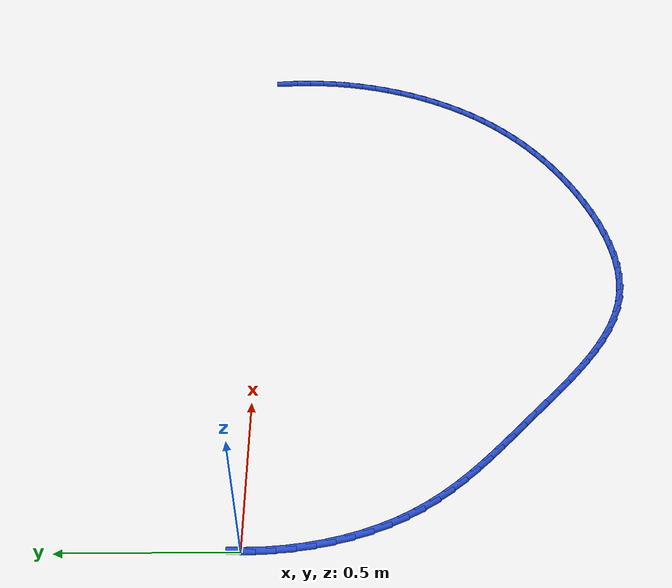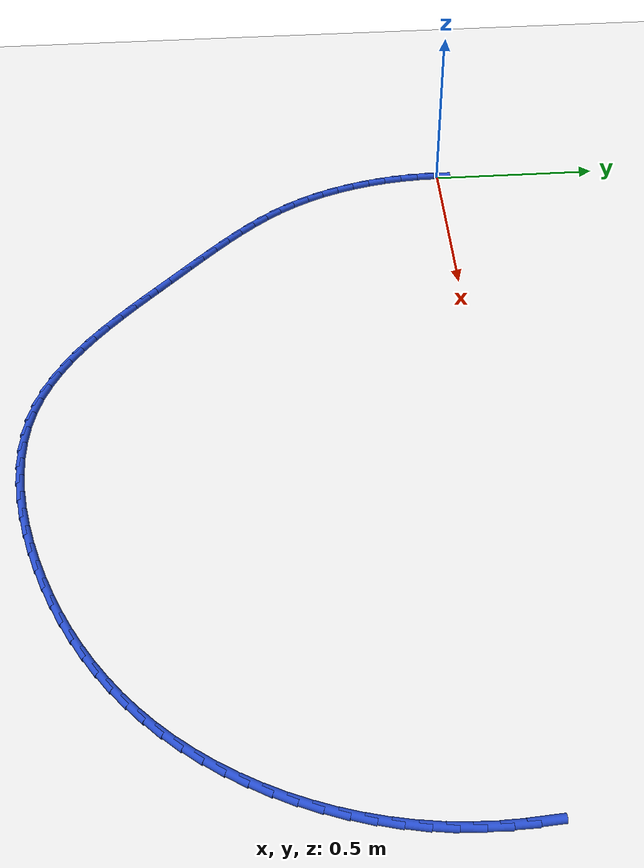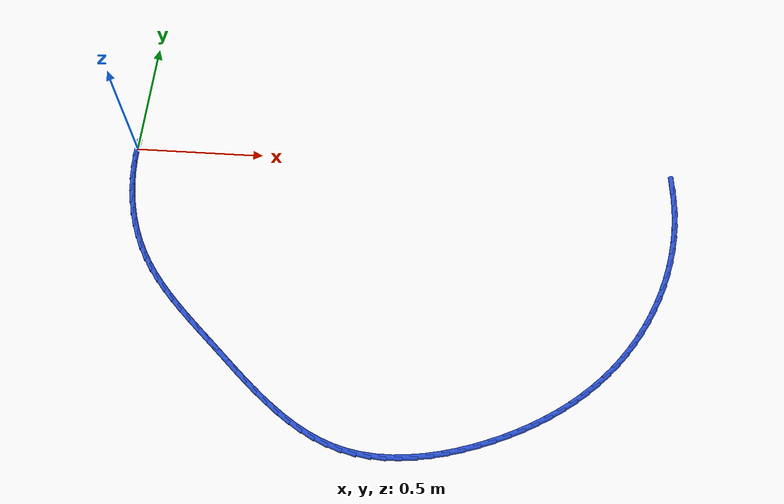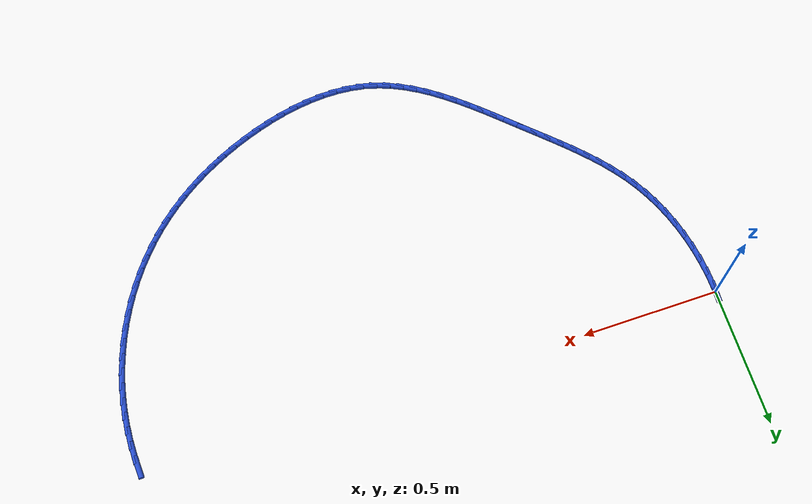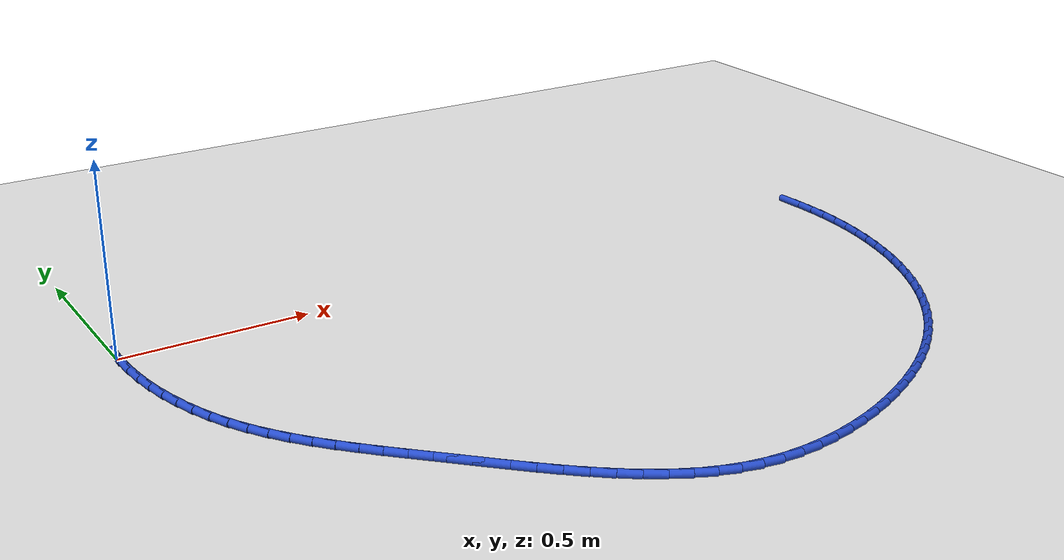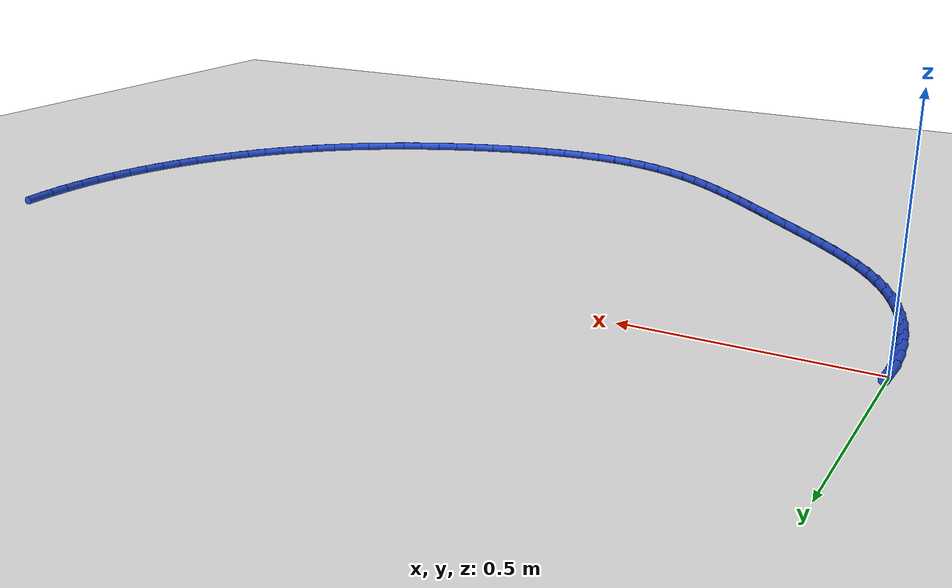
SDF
<sdf version="1.6">
 <world name="default">
  <model name="ground_plane">
   <static>1</static>
   <link name="link">
    <collision name="collision">
     <geometry><plane><normal>0 0 1</normal><size>100 100</size></plane></geometry>
     <surface><friction><ode><mu>100</mu><mu2>50</mu2></ode></friction></surface>
    </collision>
    <visual name="visual">
     <cast_shadows>0</cast_shadows>
     <geometry><plane><normal>0 0 1</normal><size>100 100</size></plane></geometry>
     <material>
      <script><uri>file://media/materials/scripts/gazebo.material</uri><name>Gazebo/WhiteGlow</name></script>
     </material>
    </visual>
   </link>
  </model>
  <model name="line">
   <link name="link_0">
    <pose>-5.0306980803327406e-17 -4.163336342344337e-17 0.01 0 1.57 1.5337237824377237</pose>
    <collision name="collision">
     <geometry><cylinder><radius>0.01</radius><length>0.08</length></cylinder></geometry>
    </collision>
    <visual name="visual">
     <material>
      <script><name>Gazebo/Blue</name><uri>file://media/materials/scripts/gazebo.material</uri></script>
     </material>
     <geometry><cylinder><radius>0.01</radius><length>0.08</length></cylinder></geometry>
    </visual>
   </link>
   <link name="link_65">
    <pose>2.1029325240520933 -0.048355621740045804 0.01 0 1.57 -1.5211881562281633</pose>
    <collision name="collision">
     <geometry><cylinder><radius>0.01</radius><length>0.08</length></cylinder></geometry>
    </collision>
    <visual name="visual">
     <material>
      <script><name>Gazebo/Blue</name><uri>file://media/materials/scripts/gazebo.material</uri></script>
     </material>
     <geometry><cylinder><radius>0.01</radius><length>0.08</length></cylinder></geometry>
    </visual>
   </link>
   <link name="link_66">
    <pose>2.105553416026026 -0.10114413645131569 0.01 0 1.57 -1.5680380547064157</pose>
    <collision name="collision">
     <geometry><cylinder><radius>0.01</radius><length>0.08</length></cylinder></geometry>
    </collision>
    <visual name="visual">
     <material>
      <script><name>Gazebo/Blue</name><uri>file://media/materials/scripts/gazebo.material</uri></script>
     </material>
     <geometry><cylinder><radius>0.01</radius><length>0.08</length></cylinder></geometry>
    </visual>
   </link>
   <link name="link_67">
    <pose>2.1056991772306577 -0.15398911704136764 0.01 0 1.57 1.5245138287157056</pose>
    <collision name="collision">
     <geometry><cylinder><radius>0.01</radius><length>0.08</length></cylinder></geometry>
    </collision>
    <visual name="visual">
     <material>
      <script><name>Gazebo/Blue</name><uri>file://media/materials/scripts/gazebo.material</uri></script>
     </material>
     <geometry><cylinder><radius>0.01</radius><length>0.08</length></cylinder></geometry>
    </visual>
   </link>
   <link name="link_68">
    <pose>2.103252849085987 -0.20680781226221878 0.01 0 1.57 1.4733071530454878</pose>
    <collision name="collision">
     <geometry><cylinder><radius>0.01</radius><length>0.08</length></cylinder></geometry>
    </collision>
    <visual name="visual">
     <material>
      <script><name>Gazebo/Blue</name><uri>file://media/materials/scripts/gazebo.material</uri></script>
     </material>
     <geometry><cylinder><radius>0.01</radius><length>0.08</length></cylinder></geometry>
    </visual>
   </link>
   <link name="link_69">
    <pose>2.0980979038435112 -0.25951729355702 0.01 0 1.57 1.420990257620386</pose>
    <collision name="collision">
     <geometry><cylinder><radius>0.01</radius><length>0.08</length></cylinder></geometry>
    </collision>
    <visual name="visual">
     <material>
      <script><name>Gazebo/Blue</name><uri>file://media/materials/scripts/gazebo.material</uri></script>
     </material>
     <geometry><cylinder><radius>0.01</radius><length>0.08</length></cylinder></geometry>
    </visual>
   </link>
   <link name="link_70">
    <pose>2.090174630823931 -0.31201124928206886 0.01 0 1.57 1.3694706388429687</pose>
    <collision name="collision">
     <geometry><cylinder><radius>0.01</radius><length>0.08</length></cylinder></geometry>
    </collision>
    <visual name="visual">
     <material>
      <script><name>Gazebo/Blue</name><uri>file://media/materials/scripts/gazebo.material</uri></script>
     </material>
     <geometry><cylinder><radius>0.01</radius><length>0.08</length></cylinder></geometry>
    </visual>
   </link>
   <link name="link_71">
    <pose>2.0795362815362854 -0.36413687816127055 0.01 0 1.57 1.3187699595308449</pose>
    <collision name="collision">
     <geometry><cylinder><radius>0.01</radius><length>0.08</length></cylinder></geometry>
    </collision>
    <visual name="visual">
     <material>
      <script><name>Gazebo/Blue</name><uri>file://media/materials/scripts/gazebo.material</uri></script>
     </material>
     <geometry><cylinder><radius>0.01</radius><length>0.08</length></cylinder></geometry>
    </visual>
   </link>
   <link name="link_72">
    <pose>2.066249458682868 -0.4157358842297725 0.01 0 1.57 1.2686624206674333</pose>
    <collision name="collision">
     <geometry><cylinder><radius>0.01</radius><length>0.08</length></cylinder></geometry>
    </collision>
    <visual name="visual">
     <material>
      <script><name>Gazebo/Blue</name><uri>file://media/materials/scripts/gazebo.material</uri></script>
     </material>
     <geometry><cylinder><radius>0.01</radius><length>0.08</length></cylinder></geometry>
    </visual>
   </link>
   <link name="link_73">
    <pose>2.0503807649659755 -0.46664997152272186 0.01 0 1.57 1.2189177848386366</pose>
    <collision name="collision">
     <geometry><cylinder><radius>0.01</radius><length>0.08</length></cylinder></geometry>
    </collision>
    <visual name="visual">
     <material>
      <script><name>Gazebo/Blue</name><uri>file://media/materials/scripts/gazebo.material</uri></script>
     </material>
     <geometry><cylinder><radius>0.01</radius><length>0.08</length></cylinder></geometry>
    </visual>
   </link>
   <link name="link_74">
    <pose>2.031996803087901 -0.5167208440752652 0.01 0 1.57 1.1693029277861655</pose>
    <collision name="collision">
     <geometry><cylinder><radius>0.01</radius><length>0.08</length></cylinder></geometry>
    </collision>
    <visual name="visual">
     <material>
      <script><name>Gazebo/Blue</name><uri>file://media/materials/scripts/gazebo.material</uri></script>
     </material>
     <geometry><cylinder><radius>0.01</radius><length>0.08</length></cylinder></geometry>
    </visual>
   </link>
   <link name="link_75">
    <pose>2.0111641757509404 -0.5657902059225505 0.01 0 1.57 1.1195829902433272</pose>
    <collision name="collision">
     <geometry><cylinder><radius>0.01</radius><length>0.08</length></cylinder></geometry>
    </collision>
    <visual name="visual">
     <material>
      <script><name>Gazebo/Blue</name><uri>file://media/materials/scripts/gazebo.material</uri></script>
     </material>
     <geometry><cylinder><radius>0.01</radius><length>0.08</length></cylinder></geometry>
    </visual>
   </link>
   <link name="link_76">
    <pose>1.9879494856573876 -0.6136997610997229 0.01 0 1.57 1.0695223705162265</pose>
    <collision name="collision">
     <geometry><cylinder><radius>0.01</radius><length>0.08</length></cylinder></geometry>
    </collision>
    <visual name="visual">
     <material>
      <script><name>Gazebo/Blue</name><uri>file://media/materials/scripts/gazebo.material</uri></script>
     </material>
     <geometry><cylinder><radius>0.01</radius><length>0.08</length></cylinder></geometry>
    </visual>
   </link>
   <link name="link_77">
    <pose>1.962419335509539 -0.6602912136419301 0.01 0 1.57 1.0188857997378384</pose>
    <collision name="collision">
     <geometry><cylinder><radius>0.01</radius><length>0.08</length></cylinder></geometry>
    </collision>
    <visual name="visual">
     <material>
      <script><name>Gazebo/Blue</name><uri>file://media/materials/scripts/gazebo.material</uri></script>
     </material>
     <geometry><cylinder><radius>0.01</radius><length>0.08</length></cylinder></geometry>
    </visual>
   </link>
   <link name="link_78">
    <pose>1.9346403280096882 -0.7054062675843199 0.01 0 1.57 0.9674397482584681</pose>
    <collision name="collision">
     <geometry><cylinder><radius>0.01</radius><length>0.08</length></cylinder></geometry>
    </collision>
    <visual name="visual">
     <material>
      <script><name>Gazebo/Blue</name><uri>file://media/materials/scripts/gazebo.material</uri></script>
     </material>
     <geometry><cylinder><radius>0.01</radius><length>0.08</length></cylinder></geometry>
    </visual>
   </link>
   <link name="link_79">
    <pose>1.9046790658601314 -0.7488866269620376 0.01 0 1.57 0.9149544225242211</pose>
    <collision name="collision">
     <geometry><cylinder><radius>0.01</radius><length>0.08</length></cylinder></geometry>
    </collision>
    <visual name="visual">
     <material>
      <script><name>Gazebo/Blue</name><uri>file://media/materials/scripts/gazebo.material</uri></script>
     </material>
     <geometry><cylinder><radius>0.01</radius><length>0.08</length></cylinder></geometry>
    </visual>
   </link>
   <link name="link_80">
    <pose>1.8726021517631621 -0.7905739958102309 0.01 0 1.57 0.8612318154040619</pose>
    <collision name="collision">
     <geometry><cylinder><radius>0.01</radius><length>0.08</length></cylinder></geometry>
    </collision>
    <visual name="visual">
     <material>
      <script><name>Gazebo/Blue</name><uri>file://media/materials/scripts/gazebo.material</uri></script>
     </material>
     <geometry><cylinder><radius>0.01</radius><length>0.08</length></cylinder></geometry>
    </visual>
   </link>
   <link name="link_81">
    <pose>1.8384762881951127 -0.8303119873578135 0.01 0 1.57 0.8071003528565533</pose>
    <collision name="collision">
     <geometry><cylinder><radius>0.01</radius><length>0.08</length></cylinder></geometry>
    </collision>
    <visual name="visual">
     <material>
      <script><name>Gazebo/Blue</name><uri>file://media/materials/scripts/gazebo.material</uri></script>
     </material>
     <geometry><cylinder><radius>0.01</radius><length>0.08</length></cylinder></geometry>
    </visual>
   </link>
   <link name="link_82">
    <pose>1.8023720507424752 -0.8680183274790665 0.01 0 1.57 0.7539496818194463</pose>
    <collision name="collision">
     <geometry><cylinder><radius>0.01</radius><length>0.08</length></cylinder></geometry>
    </collision>
    <visual name="visual">
     <material>
      <script><name>Gazebo/Blue</name><uri>file://media/materials/scripts/gazebo.material</uri></script>
     </material>
     <geometry><cylinder><radius>0.01</radius><length>0.08</length></cylinder></geometry>
    </visual>
   </link>
   <link name="link_83">
    <pose>1.7643650430583575 -0.9037069549889403 0.01 0 1.57 0.7020480090360465</pose>
    <collision name="collision">
     <geometry><cylinder><radius>0.01</radius><length>0.08</length></cylinder></geometry>
    </collision>
    <visual name="visual">
     <material>
      <script><name>Gazebo/Blue</name><uri>file://media/materials/scripts/gazebo.material</uri></script>
     </material>
     <geometry><cylinder><radius>0.01</radius><length>0.08</length></cylinder></geometry>
    </visual>
   </link>
   <link name="link_84">
    <pose>1.7245312045042607 -0.9373982325415825 0.01 0 1.57 0.6515434488077503</pose>
    <collision name="collision">
     <geometry><cylinder><radius>0.01</radius><length>0.08</length></cylinder></geometry>
    </collision>
    <visual name="visual">
     <material>
      <script><name>Gazebo/Blue</name><uri>file://media/materials/scripts/gazebo.material</uri></script>
     </material>
     <geometry><cylinder><radius>0.01</radius><length>0.08</length></cylinder></geometry>
    </visual>
   </link>
   <link name="link_85">
    <pose>1.6829464744416844 -0.9691125227911431 0.01 0 1.57 0.6025484036225813</pose>
    <collision name="collision">
     <geometry><cylinder><radius>0.01</radius><length>0.08</length></cylinder></geometry>
    </collision>
    <visual name="visual">
     <material>
      <script><name>Gazebo/Blue</name><uri>file://media/materials/scripts/gazebo.material</uri></script>
     </material>
     <geometry><cylinder><radius>0.01</radius><length>0.08</length></cylinder></geometry>
    </visual>
   </link>
   <link name="link_86">
    <pose>1.6396867922321263 -0.9988701883917706 0.01 0 1.57 0.5551408409133598</pose>
    <collision name="collision">
     <geometry><cylinder><radius>0.01</radius><length>0.08</length></cylinder></geometry>
    </collision>
    <visual name="visual">
     <material>
      <script><name>Gazebo/Blue</name><uri>file://media/materials/scripts/gazebo.material</uri></script>
     </material>
     <geometry><cylinder><radius>0.01</radius><length>0.08</length></cylinder></geometry>
    </visual>
   </link>
   <link name="link_87">
    <pose>1.5948280972370887 -1.0266915919976136 0.01 0 1.57 0.5093668354720712</pose>
    <collision name="collision">
     <geometry><cylinder><radius>0.01</radius><length>0.08</length></cylinder></geometry>
    </collision>
    <visual name="visual">
     <material>
      <script><name>Gazebo/Blue</name><uri>file://media/materials/scripts/gazebo.material</uri></script>
     </material>
     <geometry><cylinder><radius>0.01</radius><length>0.08</length></cylinder></geometry>
    </visual>
   </link>
   <link name="link_88">
    <pose>1.5484463288180697 -1.0525970962628215 0.01 0 1.57 0.4652439662289203</pose>
    <collision name="collision">
     <geometry><cylinder><radius>0.01</radius><length>0.08</length></cylinder></geometry>
    </collision>
    <visual name="visual">
     <material>
      <script><name>Gazebo/Blue</name><uri>file://media/materials/scripts/gazebo.material</uri></script>
     </material>
     <geometry><cylinder><radius>0.01</radius><length>0.08</length></cylinder></geometry>
    </visual>
   </link>
   <link name="link_89">
    <pose>1.500617426336569 -1.076607063841543 0.01 0 1.57 0.4227651817316309</pose>
    <collision name="collision">
     <geometry><cylinder><radius>0.01</radius><length>0.08</length></cylinder></geometry>
    </collision>
    <visual name="visual">
     <material>
      <script><name>Gazebo/Blue</name><uri>file://media/materials/scripts/gazebo.material</uri></script>
     </material>
     <geometry><cylinder><radius>0.01</radius><length>0.08</length></cylinder></geometry>
    </visual>
   </link>
   <link name="link_90">
    <pose>1.4514173291540862 -1.098741857387927 0.01 0 1.57 0.3817324309351893</pose>
    <collision name="collision">
     <geometry><cylinder><radius>0.01</radius><length>0.08</length></cylinder></geometry>
    </collision>
    <visual name="visual">
     <material>
      <script><name>Gazebo/Blue</name><uri>file://media/materials/scripts/gazebo.material</uri></script>
     </material>
     <geometry><cylinder><radius>0.01</radius><length>0.08</length></cylinder></geometry>
    </visual>
   </link>
   <link name="link_91">
    <pose>1.4009307344388253 -1.1190083337087868 0.01 0 1.57 0.3396775787487234</pose>
    <collision name="collision">
     <geometry><cylinder><radius>0.01</radius><length>0.08</length></cylinder></geometry>
    </collision>
    <visual name="visual">
     <material>
      <script><name>Gazebo/Blue</name><uri>file://media/materials/scripts/gazebo.material</uri></script>
     </material>
     <geometry><cylinder><radius>0.01</radius><length>0.08</length></cylinder></geometry>
    </visual>
   </link>
   <link name="link_92">
    <pose>1.349359832572973 -1.1372321575083388 0.01 0 1.57 0.2943730458315849</pose>
    <collision name="collision">
     <geometry><cylinder><radius>0.01</radius><length>0.08</length></cylinder></geometry>
    </collision>
    <visual name="visual">
     <material>
      <script><name>Gazebo/Blue</name><uri>file://media/materials/scripts/gazebo.material</uri></script>
     </material>
     <geometry><cylinder><radius>0.01</radius><length>0.08</length></cylinder></geometry>
    </visual>
   </link>
   <link name="link_93">
    <pose>1.296990795749686 -1.1531094809819957 0.01 0 1.57 0.2450565600316409</pose>
    <collision name="collision">
     <geometry><cylinder><radius>0.01</radius><length>0.08</length></cylinder></geometry>
    </collision>
    <visual name="visual">
     <material>
      <script><name>Gazebo/Blue</name><uri>file://media/materials/scripts/gazebo.material</uri></script>
     </material>
     <geometry><cylinder><radius>0.01</radius><length>0.08</length></cylinder></geometry>
    </visual>
   </link>
   <link name="link_94">
    <pose>1.2441116139015878 -1.1663336530991413 0.01 0 1.57 0.1909428754077271</pose>
    <collision name="collision">
     <geometry><cylinder><radius>0.01</radius><length>0.08</length></cylinder></geometry>
    </collision>
    <visual name="visual">
     <material>
      <script><name>Gazebo/Blue</name><uri>file://media/materials/scripts/gazebo.material</uri></script>
     </material>
     <geometry><cylinder><radius>0.01</radius><length>0.08</length></cylinder></geometry>
    </visual>
   </link>
   <link name="link_95">
    <pose>1.1910102769613031 -1.1765980228291595 0.01 0 1.57 0.13118992610317518</pose>
    <collision name="collision">
     <geometry><cylinder><radius>0.01</radius><length>0.08</length></cylinder></geometry>
    </collision>
    <visual name="visual">
     <material>
      <script><name>Gazebo/Blue</name><uri>file://media/materials/scripts/gazebo.material</uri></script>
     </material>
     <geometry><cylinder><radius>0.01</radius><length>0.08</length></cylinder></geometry>
    </visual>
   </link>
   <link name="link_96">
    <pose>1.1379747748614544 -1.1835959391414335 0.01 0 1.57 0.06491819436064733</pose>
    <collision name="collision">
     <geometry><cylinder><radius>0.01</radius><length>0.08</length></cylinder></geometry>
    </collision>
    <visual name="visual">
     <material>
      <script><name>Gazebo/Blue</name><uri>file://media/materials/scripts/gazebo.material</uri></script>
     </material>
     <geometry><cylinder><radius>0.01</radius><length>0.08</length></cylinder></geometry>
    </visual>
   </link>
   <link name="link_97">
    <pose>1.0852930975346655 -1.1870207510053463 0.01 0 1.57 -0.008741991288906188</pose>
    <collision name="collision">
     <geometry><cylinder><radius>0.01</radius><length>0.08</length></cylinder></geometry>
    </collision>
    <visual name="visual">
     <material>
      <script><name>Gazebo/Blue</name><uri>file://media/materials/scripts/gazebo.material</uri></script>
     </material>
     <geometry><cylinder><radius>0.01</radius><length>0.08</length></cylinder></geometry>
    </visual>
   </link>
   <link name="link_98">
    <pose>1.0332532349135601 -1.1865658073902816 0.01 0 1.57 -0.09056249561959402</pose>
    <collision name="collision">
     <geometry><cylinder><radius>0.01</radius><length>0.08</length></cylinder></geometry>
    </collision>
    <visual name="visual">
     <material>
      <script><name>Gazebo/Blue</name><uri>file://media/materials/scripts/gazebo.material</uri></script>
     </material>
     <geometry><cylinder><radius>0.01</radius><length>0.08</length></cylinder></geometry>
    </visual>
   </link>
   <link name="link_99">
    <pose>0.9821431769307609 -1.1819244572656233 0.01 0 1.57 -0.18107722942476787</pose>
    <collision name="collision">
     <geometry><cylinder><radius>0.01</radius><length>0.08</length></cylinder></geometry>
    </collision>
    <visual name="visual">
     <material>
      <script><name>Gazebo/Blue</name><uri>file://media/materials/scripts/gazebo.material</uri></script>
     </material>
     <geometry><cylinder><radius>0.01</radius><length>0.08</length></cylinder></geometry>
    </visual>
   </link>
   <link name="link_100">
    <pose>0.9322509135188928 -1.1727900496007546 0.01 0 1.57 -0.27919944441899314</pose>
    <collision name="collision">
     <geometry><cylinder><radius>0.01</radius><length>0.08</length></cylinder></geometry>
    </collision>
    <visual name="visual">
     <material>
      <script><name>Gazebo/Blue</name><uri>file://media/materials/scripts/gazebo.material</uri></script>
     </material>
     <geometry><cylinder><radius>0.01</radius><length>0.08</length></cylinder></geometry>
    </visual>
   </link>
   <link name="link_101">
    <pose>0.8838353854201298 -1.1589099096459787 0.01 0 1.57 -0.3736615629239459</pose>
    <collision name="collision">
     <geometry><cylinder><radius>0.01</radius><length>0.08</length></cylinder></geometry>
    </collision>
    <visual name="visual">
     <material>
      <script><name>Gazebo/Blue</name><uri>file://media/materials/scripts/gazebo.material</uri></script>
     </material>
     <geometry><cylinder><radius>0.01</radius><length>0.08</length></cylinder></geometry>
    </visual>
   </link>
   <link name="link_102">
    <pose>0.8368994485303406 -1.140507193729511 0.01 0 1.57 -0.4576840453532546</pose>
    <collision name="collision">
     <geometry><cylinder><radius>0.01</radius><length>0.08</length></cylinder></geometry>
    </collision>
    <visual name="visual">
     <material>
      <script><name>Gazebo/Blue</name><uri>file://media/materials/scripts/gazebo.material</uri></script>
     </material>
     <geometry><cylinder><radius>0.01</radius><length>0.08</length></cylinder></geometry>
    </visual>
   </link>
   <link name="link_103">
    <pose>0.791312712174648 -1.1180526435416116 0.01 0 1.57 -0.5306193190447825</pose>
    <collision name="collision">
     <geometry><cylinder><radius>0.01</radius><length>0.08</length></cylinder></geometry>
    </collision>
    <visual name="visual">
     <material>
      <script><name>Gazebo/Blue</name><uri>file://media/materials/scripts/gazebo.material</uri></script>
     </material>
     <geometry><cylinder><radius>0.01</radius><length>0.08</length></cylinder></geometry>
    </visual>
   </link>
   <link name="link_104">
    <pose>0.7469436422999935 -1.092019125282753 0.01 0 1.57 -0.5925366410704646</pose>
    <collision name="collision">
     <geometry><cylinder><radius>0.01</radius><length>0.08</length></cylinder></geometry>
    </collision>
    <visual name="visual">
     <material>
      <script><name>Gazebo/Blue</name><uri>file://media/materials/scripts/gazebo.material</uri></script>
     </material>
     <geometry><cylinder><radius>0.01</radius><length>0.08</length></cylinder></geometry>
    </visual>
   </link>
   <link name="link_105">
    <pose>0.7036607048533188 -1.062879505153409 0.01 0 1.57 -0.6439031992703007</pose>
    <collision name="collision">
     <geometry><cylinder><radius>0.01</radius><length>0.08</length></cylinder></geometry>
    </collision>
    <visual name="visual">
     <material>
      <script><name>Gazebo/Blue</name><uri>file://media/materials/scripts/gazebo.material</uri></script>
     </material>
     <geometry><cylinder><radius>0.01</radius><length>0.08</length></cylinder></geometry>
    </visual>
   </link>
   <link name="link_106">
    <pose>0.661332365781566 -1.0311066493540537 0.01 0 1.57 -0.6853594181583836</pose>
    <collision name="collision">
     <geometry><cylinder><radius>0.01</radius><length>0.08</length></cylinder></geometry>
    </collision>
    <visual name="visual">
     <material>
      <script><name>Gazebo/Blue</name><uri>file://media/materials/scripts/gazebo.material</uri></script>
     </material>
     <geometry><cylinder><radius>0.01</radius><length>0.08</length></cylinder></geometry>
    </visual>
   </link>
   <link name="link_107">
    <pose>0.6198270910316763 -0.9971734240851595 0.01 0 1.57 -0.7175616549832613</pose>
    <collision name="collision">
     <geometry><cylinder><radius>0.01</radius><length>0.08</length></cylinder></geometry>
    </collision>
    <visual name="visual">
     <material>
      <script><name>Gazebo/Blue</name><uri>file://media/materials/scripts/gazebo.material</uri></script>
     </material>
     <geometry><cylinder><radius>0.01</radius><length>0.08</length></cylinder></geometry>
    </visual>
   </link>
   <link name="link_108">
    <pose>0.5790133465505932 -0.9615526955472016 0.01 0 1.57 -0.7410839330639506</pose>
    <collision name="collision">
     <geometry><cylinder><radius>0.01</radius><length>0.08</length></cylinder></geometry>
    </collision>
    <visual name="visual">
     <material>
      <script><name>Gazebo/Blue</name><uri>file://media/materials/scripts/gazebo.material</uri></script>
     </material>
     <geometry><cylinder><radius>0.01</radius><length>0.08</length></cylinder></geometry>
    </visual>
   </link>
   <link name="link_109">
    <pose>0.538759598285258 -0.9247173299406529 0.01 0 1.57 -0.7563613750598822</pose>
    <collision name="collision">
     <geometry><cylinder><radius>0.01</radius><length>0.08</length></cylinder></geometry>
    </collision>
    <visual name="visual">
     <material>
      <script><name>Gazebo/Blue</name><uri>file://media/materials/scripts/gazebo.material</uri></script>
     </material>
     <geometry><cylinder><radius>0.01</radius><length>0.08</length></cylinder></geometry>
    </visual>
   </link>
   <link name="link_110">
    <pose>0.4989343121826121 -0.8871401934659866 0.01 0 1.57 -0.7636590372007008</pose>
    <collision name="collision">
     <geometry><cylinder><radius>0.01</radius><length>0.08</length></cylinder></geometry>
    </collision>
    <visual name="visual">
     <material>
      <script><name>Gazebo/Blue</name><uri>file://media/materials/scripts/gazebo.material</uri></script>
     </material>
     <geometry><cylinder><radius>0.01</radius><length>0.08</length></cylinder></geometry>
    </visual>
   </link>
   <link name="link_111">
    <pose>0.45940595418959834 -0.8492941523236767 0.01 0 1.57 -0.7631265289347219</pose>
    <collision name="collision">
     <geometry><cylinder><radius>0.01</radius><length>0.08</length></cylinder></geometry>
    </collision>
    <visual name="visual">
     <material>
      <script><name>Gazebo/Blue</name><uri>file://media/materials/scripts/gazebo.material</uri></script>
     </material>
     <geometry><cylinder><radius>0.01</radius><length>0.08</length></cylinder></geometry>
    </visual>
   </link>
   <link name="link_112">
    <pose>0.42004502233538066 -0.8116485651404355 0.01 0 1.57 -0.76018842117396</pose>
    <collision name="collision">
     <geometry><cylinder><radius>0.01</radius><length>0.08</length></cylinder></geometry>
    </collision>
    <visual name="visual">
     <material>
      <script><name>Gazebo/Blue</name><uri>file://media/materials/scripts/gazebo.material</uri></script>
     </material>
     <geometry><cylinder><radius>0.01</radius><length>0.08</length></cylinder></geometry>
    </visual>
   </link>
   <link name="link_113">
    <pose>0.38087627488817666 -0.7744065221995167 0.01 0 1.57 -0.7641795906290306</pose>
    <collision name="collision">
     <geometry><cylinder><radius>0.01</radius><length>0.08</length></cylinder></geometry>
    </collision>
    <visual name="visual">
     <material>
      <script><name>Gazebo/Blue</name><uri>file://media/materials/scripts/gazebo.material</uri></script>
     </material>
     <geometry><cylinder><radius>0.01</radius><length>0.08</length></cylinder></geometry>
    </visual>
   </link>
   <link name="link_114">
    <pose>0.34218429171020864 -0.7373226361605575 0.01 0 1.57 -0.7761934284257298</pose>
    <collision name="collision">
     <geometry><cylinder><radius>0.01</radius><length>0.08</length></cylinder></geometry>
    </collision>
    <visual name="visual">
     <material>
      <script><name>Gazebo/Blue</name><uri>file://media/materials/scripts/gazebo.material</uri></script>
     </material>
     <geometry><cylinder><radius>0.01</radius><length>0.08</length></cylinder></geometry>
    </visual>
   </link>
   <link name="link_115">
    <pose>0.3042786130474095 -0.7001084356061593 0.01 0 1.57 -0.796455227532292</pose>
    <collision name="collision">
     <geometry><cylinder><radius>0.01</radius><length>0.08</length></cylinder></geometry>
    </collision>
    <visual name="visual">
     <material>
      <script><name>Gazebo/Blue</name><uri>file://media/materials/scripts/gazebo.material</uri></script>
     </material>
     <geometry><cylinder><radius>0.01</radius><length>0.08</length></cylinder></geometry>
    </visual>
   </link>
   <link name="link_116">
    <pose>0.26746877914571365 -0.662475449118925 0.01 0 1.57 -0.8251874061147233</pose>
    <collision name="collision">
     <geometry><cylinder><radius>0.01</radius><length>0.08</length></cylinder></geometry>
    </collision>
    <visual name="visual">
     <material>
      <script><name>Gazebo/Blue</name><uri>file://media/materials/scripts/gazebo.material</uri></script>
     </material>
     <geometry><cylinder><radius>0.01</radius><length>0.08</length></cylinder></geometry>
    </visual>
   </link>
   <link name="link_117">
    <pose>0.2320643302510539 -0.624135205281456 0.01 0 1.57 -0.8625662316444104</pose>
    <collision name="collision">
     <geometry><cylinder><radius>0.01</radius><length>0.08</length></cylinder></geometry>
    </collision>
    <visual name="visual">
     <material>
      <script><name>Gazebo/Blue</name><uri>file://media/materials/scripts/gazebo.material</uri></script>
     </material>
     <geometry><cylinder><radius>0.01</radius><length>0.08</length></cylinder></geometry>
    </visual>
   </link>
   <link name="link_118">
    <pose>0.19837480660936307 -0.5847992326763533 0.01 0 1.57 -0.9086559628812685</pose>
    <collision name="collision">
     <geometry><cylinder><radius>0.01</radius><length>0.08</length></cylinder></geometry>
    </collision>
    <visual name="visual">
     <material>
      <script><name>Gazebo/Blue</name><uri>file://media/materials/scripts/gazebo.material</uri></script>
     </material>
     <geometry><cylinder><radius>0.01</radius><length>0.08</length></cylinder></geometry>
    </visual>
   </link>
   <link name="link_119">
    <pose>0.16670974846657552 -0.5441790598862198 0.01 0 1.57 -0.9633216867627407</pose>
    <collision name="collision">
     <geometry><cylinder><radius>0.01</radius><length>0.08</length></cylinder></geometry>
    </collision>
    <visual name="visual">
     <material>
      <script><name>Gazebo/Blue</name><uri>file://media/materials/scripts/gazebo.material</uri></script>
     </material>
     <geometry><cylinder><radius>0.01</radius><length>0.08</length></cylinder></geometry>
    </visual>
   </link>
   <link name="link_120">
    <pose>0.13737869606862413 -0.5019862154936573 0.01 0 1.57 -1.0261234538352506</pose>
    <collision name="collision">
     <geometry><cylinder><radius>0.01</radius><length>0.08</length></cylinder></geometry>
    </collision>
    <visual name="visual">
     <material>
      <script><name>Gazebo/Blue</name><uri>file://media/materials/scripts/gazebo.material</uri></script>
     </material>
     <geometry><cylinder><radius>0.01</radius><length>0.08</length></cylinder></geometry>
    </visual>
   </link>
   <link name="link_121">
    <pose>0.11069100688734974 -0.4579325432581996 0.01 0 1.57 -1.0936507961872461</pose>
    <collision name="collision">
     <geometry><cylinder><radius>0.01</radius><length>0.08</length></cylinder></geometry>
    </collision>
    <visual name="visual">
     <material>
      <script><name>Gazebo/Blue</name><uri>file://media/materials/scripts/gazebo.material</uri></script>
     </material>
     <geometry><cylinder><radius>0.01</radius><length>0.08</length></cylinder></geometry>
    </visual>
   </link>
   <link name="link_122">
    <pose>0.08687607301378336 -0.411867779805379 0.01 0 1.57 -1.1588540148144297</pose>
    <collision name="collision">
     <geometry><cylinder><radius>0.01</radius><length>0.08</length></cylinder></geometry>
    </collision>
    <visual name="visual">
     <material>
      <script><name>Gazebo/Blue</name><uri>file://media/materials/scripts/gazebo.material</uri></script>
     </material>
     <geometry><cylinder><radius>0.01</radius><length>0.08</length></cylinder></geometry>
    </visual>
   </link>
   <link name="link_123">
    <pose>0.0659584075776512 -0.36399495648490215 0.01 0 1.57 -1.2210147006402836</pose>
    <collision name="collision">
     <geometry><cylinder><radius>0.01</radius><length>0.08</length></cylinder></geometry>
    </collision>
    <visual name="visual">
     <material>
      <script><name>Gazebo/Blue</name><uri>file://media/materials/scripts/gazebo.material</uri></script>
     </material>
     <geometry><cylinder><radius>0.01</radius><length>0.08</length></cylinder></geometry>
    </visual>
   </link>
   <link name="link_124">
    <pose>0.04793017408165747 -0.3145728885712086 0.01 0 1.57 -1.2805540699257885</pose>
    <collision name="collision">
     <geometry><cylinder><radius>0.01</radius><length>0.08</length></cylinder></geometry>
    </collision>
    <visual name="visual">
     <material>
      <script><name>Gazebo/Blue</name><uri>file://media/materials/scripts/gazebo.material</uri></script>
     </material>
     <geometry><cylinder><radius>0.01</radius><length>0.08</length></cylinder></geometry>
    </visual>
   </link>
   <link name="link_125">
    <pose>0.032783536028505554 -0.2638603913387354 0.01 0 1.57 -1.3379156048735696</pose>
    <collision name="collision">
     <geometry><cylinder><radius>0.01</radius><length>0.08</length></cylinder></geometry>
    </collision>
    <visual name="visual">
     <material>
      <script><name>Gazebo/Blue</name><uri>file://media/materials/scripts/gazebo.material</uri></script>
     </material>
     <geometry><cylinder><radius>0.01</radius><length>0.08</length></cylinder></geometry>
    </visual>
   </link>
   <link name="link_126">
    <pose>0.02051065692089886 -0.21211628006191965 0.01 0 1.57 -1.3935535453616055</pose>
    <collision name="collision">
     <geometry><cylinder><radius>0.01</radius><length>0.08</length></cylinder></geometry>
    </collision>
    <visual name="visual">
     <material>
      <script><name>Gazebo/Blue</name><uri>file://media/materials/scripts/gazebo.material</uri></script>
     </material>
     <geometry><cylinder><radius>0.01</radius><length>0.08</length></cylinder></geometry>
    </visual>
   </link>
   <link name="link_127">
    <pose>0.011103700261541435 -0.15959937001520086 0.01 0 1.57 -1.4479267856320406</pose>
    <collision name="collision">
     <geometry><cylinder><radius>0.01</radius><length>0.08</length></cylinder></geometry>
    </collision>
    <visual name="visual">
     <material>
      <script><name>Gazebo/Blue</name><uri>file://media/materials/scripts/gazebo.material</uri></script>
     </material>
     <geometry><cylinder><radius>0.01</radius><length>0.08</length></cylinder></geometry>
    </visual>
   </link>
   <link name="link_128">
    <pose>0.0045548295531367055 -0.10656847647301601 0.01 0 1.57 -1.5014968054190205</pose>
    <collision name="collision">
     <geometry><cylinder><radius>0.01</radius><length>0.08</length></cylinder></geometry>
    </collision>
    <visual name="visual">
     <material>
      <script><name>Gazebo/Blue</name><uri>file://media/materials/scripts/gazebo.material</uri></script>
     </material>
     <geometry><cylinder><radius>0.01</radius><length>0.08</length></cylinder></geometry>
    </visual>
   </link>
   <link name="link_129">
    <pose>0.0008562082983883321 -0.053282414709803105 0.01 0 1.57 -1.5547284624242095</pose>
    <collision name="collision">
     <geometry><cylinder><radius>0.01</radius><length>0.08</length></cylinder></geometry>
    </collision>
    <visual name="visual">
     <material>
      <script><name>Gazebo/Blue</name><uri>file://media/materials/scripts/gazebo.material</uri></script>
     </material>
     <geometry><cylinder><radius>0.01</radius><length>0.08</length></cylinder></geometry>
    </visual>
   </link>
  </model>
 </world>
</sdf>
